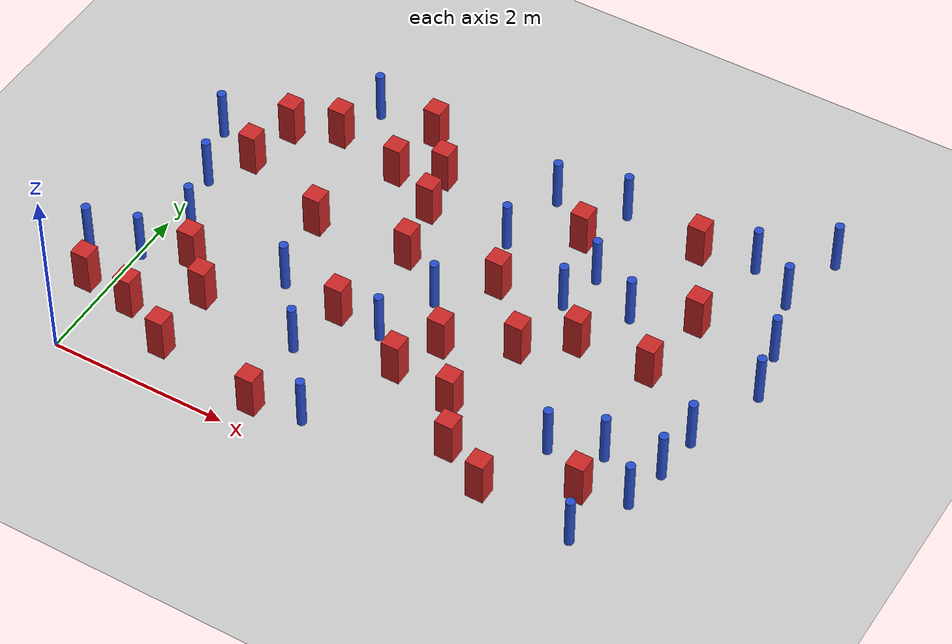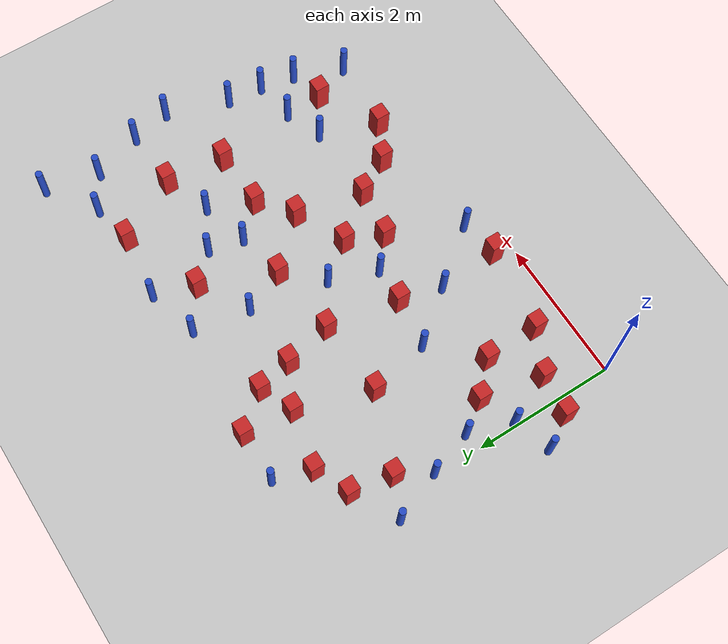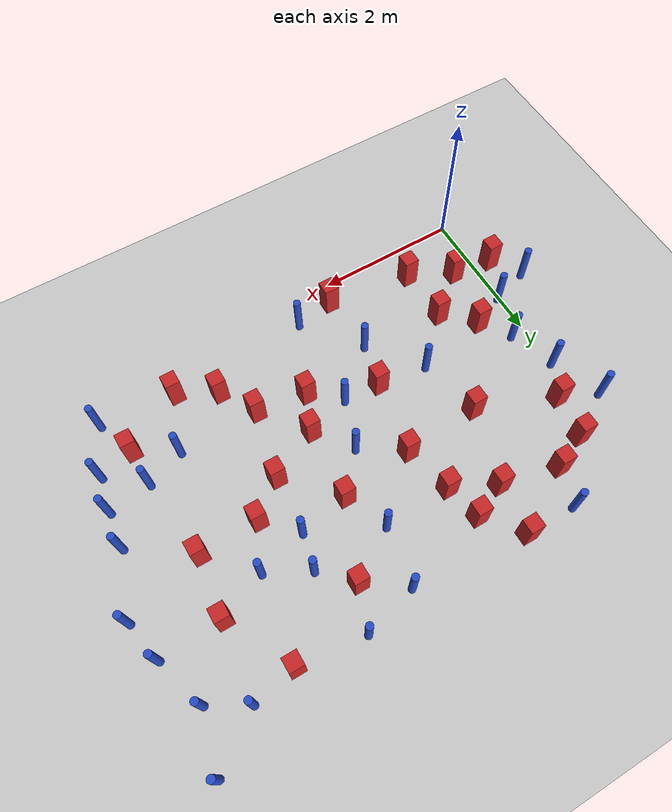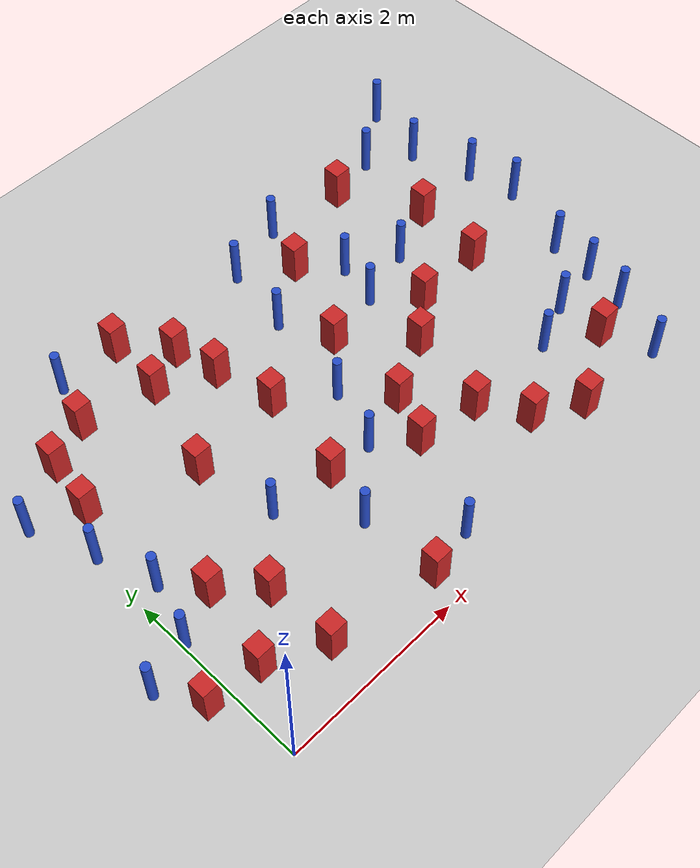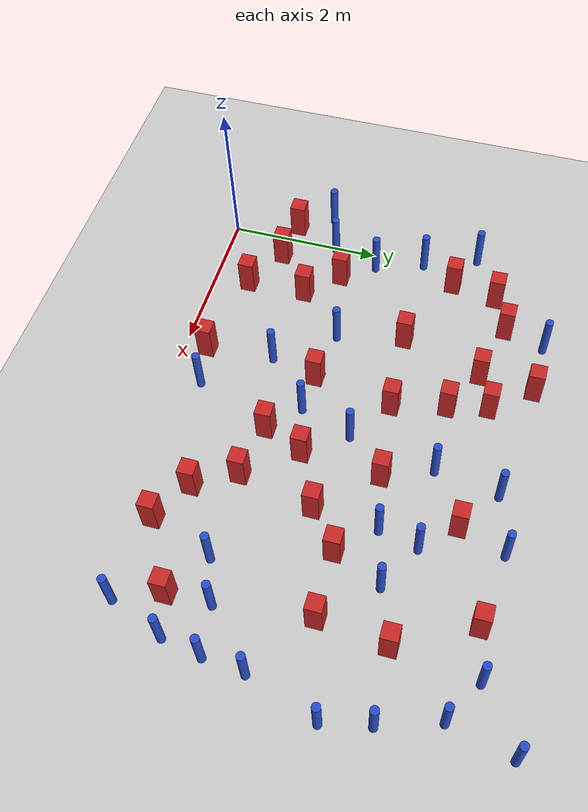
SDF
<sdf version="1.6">
 <world name="default">
  <model name="ground_plane">
   <static>1</static>
   <link name="link">
    <collision name="collision">
     <geometry><plane><normal>0 0 1</normal><size>100 100</size></plane></geometry>
     <surface><friction><ode><mu>100</mu><mu2>50</mu2></ode></friction></surface>
    </collision>
    <visual name="visual">
     <cast_shadows>0</cast_shadows>
     <geometry><plane><normal>0 0 1</normal><size>100 100</size></plane></geometry>
     <material>
      <ambient>1.0 1.0 1.0 1.0</ambient>
      <diffuse>0.8 0.8 0.8 1.0</diffuse>
      <specular>0.01 0.01 0.01 1.000000</specular>
     </material>
    </visual>
   </link>
  </model>
  <model name="square_post_obstacle4">
   <static>true</static>
   <pose>4.64315620051 0.532933999139 8.22691968438e-08 7.2212513382e-06 -7.54495500217e-07 2.29674213826e-05</pose>
   <link name="link">
    <pose>0 0 0.25 0 -0 0</pose>
    <inertial>
     <mass>100</mass>
     <inertia>
      <ixx>0.166667</ixx>
      <ixy>0</ixy>
      <ixz>0</ixz>
      <iyy>0.166667</iyy>
      <iyz>0</iyz>
      <izz>0.166667</izz>
     </inertia>
    </inertial>
    <collision name="collision"><geometry><box><size>.2 .2 .5</size></box></geometry></collision>
    <visual name="visual">
     <geometry><box><size>.2 .2 .5</size></box></geometry>
     <material>
      <script><name>Gazebo/Red</name><uri>file://media/materials/scripts/gazebo.material</uri></script>
     </material>
    </visual>
   </link>
  </model>
  <model name="pole_obstacle4">
   <static>true</static>
   <pose>3.19134797535 3.53822865445 2.88873142074e-08 -9.90536690232e-09 4.6021994898e-07 -1.20965994968e-07</pose>
   <link name="link">
    <pose>0 0 0.3 0 -0 0</pose>
    <inertial>
     <mass>1</mass>
     <inertia><ixx>0.145833</ixx><ixy>0</ixy><ixz>0</ixz><iyy>0.145833</iyy><iyz>0</iyz><izz>0.125</izz></inertia>
    </inertial>
    <collision name="collision">
     <geometry><cylinder><radius>0.05</radius><length>.6</length></cylinder></geometry>
    </collision>
    <visual name="visual">
     <geometry><cylinder><radius>0.05</radius><length>.6</length></cylinder></geometry>
     <material>
      <script><name>Gazebo/Blue</name><uri>file://media/materials/scripts/gazebo.material</uri></script>
     </material>
    </visual>
   </link>
  </model>
  <model name="square_post_obstacle12">
   <static>true</static>
   <pose>4.12839357007 0.815747877024 8.22691968438e-08 7.2212513382e-06 -7.54495500217e-07 2.29674213826e-05</pose>
   <link name="link">
    <pose>0 0 0.25 0 -0 0</pose>
    <inertial>
     <mass>100</mass>
     <inertia>
      <ixx>0.166667</ixx>
      <ixy>0</ixy>
      <ixz>0</ixz>
      <iyy>0.166667</iyy>
      <iyz>0</iyz>
      <izz>0.166667</izz>
     </inertia>
    </inertial>
    <collision name="collision"><geometry><box><size>.2 .2 .5</size></box></geometry></collision>
    <visual name="visual">
     <geometry><box><size>.2 .2 .5</size></box></geometry>
     <material>
      <script><name>Gazebo/Red</name><uri>file://media/materials/scripts/gazebo.material</uri></script>
     </material>
    </visual>
   </link>
  </model>
  <model name="square_post_obstacle25">
   <static>true</static>
   <pose>2.2391453653 1.79144749832 8.22691968438e-08 7.2212513382e-06 -7.54495500217e-07 2.29674213826e-05</pose>
   <link name="link">
    <pose>0 0 0.25 0 -0 0</pose>
    <inertial>
     <mass>100</mass>
     <inertia>
      <ixx>0.166667</ixx>
      <ixy>0</ixy>
      <ixz>0</ixz>
      <iyy>0.166667</iyy>
      <iyz>0</iyz>
      <izz>0.166667</izz>
     </inertia>
    </inertial>
    <collision name="collision"><geometry><box><size>.2 .2 .5</size></box></geometry></collision>
    <visual name="visual">
     <geometry><box><size>.2 .2 .5</size></box></geometry>
     <material>
      <script><name>Gazebo/Red</name><uri>file://media/materials/scripts/gazebo.material</uri></script>
     </material>
    </visual>
   </link>
  </model>
  <model name="square_post_obstacle29">
   <static>true</static>
   <pose>5.43219369134 3.52341071615 8.22691968438e-08 7.2212513382e-06 -7.54495500217e-07 2.29674213826e-05</pose>
   <link name="link">
    <pose>0 0 0.25 0 -0 0</pose>
    <inertial>
     <mass>100</mass>
     <inertia>
      <ixx>0.166667</ixx>
      <ixy>0</ixy>
      <ixz>0</ixz>
      <iyy>0.166667</iyy>
      <iyz>0</iyz>
      <izz>0.166667</izz>
     </inertia>
    </inertial>
    <collision name="collision"><geometry><box><size>.2 .2 .5</size></box></geometry></collision>
    <visual name="visual">
     <geometry><box><size>.2 .2 .5</size></box></geometry>
     <material>
      <script><name>Gazebo/Red</name><uri>file://media/materials/scripts/gazebo.material</uri></script>
     </material>
    </visual>
   </link>
  </model>
  <model name="pole_obstacle21">
   <static>true</static>
   <pose>6.05822907915 1.62308111221 2.88873142074e-08 -9.90536689445e-09 4.60219948999e-07 -1.20965994956e-07</pose>
   <link name="link">
    <pose>0 0 0.3 0 -0 0</pose>
    <inertial>
     <mass>1</mass>
     <inertia><ixx>0.145833</ixx><ixy>0</ixy><ixz>0</ixz><iyy>0.145833</iyy><iyz>0</iyz><izz>0.125</izz></inertia>
    </inertial>
    <collision name="collision">
     <geometry><cylinder><radius>0.05</radius><length>.6</length></cylinder></geometry>
    </collision>
    <visual name="visual">
     <geometry><cylinder><radius>0.05</radius><length>.6</length></cylinder></geometry>
     <material>
      <script><name>Gazebo/Blue</name><uri>file://media/materials/scripts/gazebo.material</uri></script>
     </material>
    </visual>
   </link>
  </model>
  <model name="square_post_obstacle31">
   <static>true</static>
   <pose>1.68851876333 3.79857637818 8.22691968438e-08 7.2212513382e-06 -7.54495500217e-07 2.29674213826e-05</pose>
   <link name="link">
    <pose>0 0 0.25 0 -0 0</pose>
    <inertial>
     <mass>100</mass>
     <inertia>
      <ixx>0.166667</ixx>
      <ixy>0</ixy>
      <ixz>0</ixz>
      <iyy>0.166667</iyy>
      <iyz>0</iyz>
      <izz>0.166667</izz>
     </inertia>
    </inertial>
    <collision name="collision"><geometry><box><size>.2 .2 .5</size></box></geometry></collision>
    <visual name="visual">
     <geometry><box><size>.2 .2 .5</size></box></geometry>
     <material>
      <script><name>Gazebo/Red</name><uri>file://media/materials/scripts/gazebo.material</uri></script>
     </material>
    </visual>
   </link>
  </model>
  <model name="square_post_obstacle33">
   <static>true</static>
   <pose>4.05178741238 2.28068657755 8.22691968438e-08 7.2212513382e-06 -7.54495500217e-07 2.29674213826e-05</pose>
   <link name="link">
    <pose>0 0 0.25 0 -0 0</pose>
    <inertial>
     <mass>100</mass>
     <inertia>
      <ixx>0.166667</ixx>
      <ixy>0</ixy>
      <ixz>0</ixz>
      <iyy>0.166667</iyy>
      <iyz>0</iyz>
      <izz>0.166667</izz>
     </inertia>
    </inertial>
    <collision name="collision"><geometry><box><size>.2 .2 .5</size></box></geometry></collision>
    <visual name="visual">
     <geometry><box><size>.2 .2 .5</size></box></geometry>
     <material>
      <script><name>Gazebo/Red</name><uri>file://media/materials/scripts/gazebo.material</uri></script>
     </material>
    </visual>
   </link>
  </model>
  <model name="pole_obstacle33">
   <static>true</static>
   <pose>0.238726340503 2.08058286565 2.88873142074e-08 -9.90536692545e-09 4.60219948925e-07 -1.2096599499e-07</pose>
   <link name="link">
    <pose>0 0 0.3 0 -0 0</pose>
    <inertial>
     <mass>1</mass>
     <inertia><ixx>0.145833</ixx><ixy>0</ixy><ixz>0</ixz><iyy>0.145833</iyy><iyz>0</iyz><izz>0.125</izz></inertia>
    </inertial>
    <collision name="collision">
     <geometry><cylinder><radius>0.05</radius><length>.6</length></cylinder></geometry>
    </collision>
    <visual name="visual">
     <geometry><cylinder><radius>0.05</radius><length>.6</length></cylinder></geometry>
     <material>
      <script><name>Gazebo/Blue</name><uri>file://media/materials/scripts/gazebo.material</uri></script>
     </material>
    </visual>
   </link>
  </model>
  <model name="pole_obstacle34">
   <static>true</static>
   <pose>4.23573299197 3.57138620205 2.88873142074e-08 -9.90536690245e-09 4.6021994898e-07 -1.20965994966e-07</pose>
   <link name="link">
    <pose>0 0 0.3 0 -0 0</pose>
    <inertial>
     <mass>1</mass>
     <inertia><ixx>0.145833</ixx><ixy>0</ixy><ixz>0</ixz><iyy>0.145833</iyy><iyz>0</iyz><izz>0.125</izz></inertia>
    </inertial>
    <collision name="collision">
     <geometry><cylinder><radius>0.05</radius><length>.6</length></cylinder></geometry>
    </collision>
    <visual name="visual">
     <geometry><cylinder><radius>0.05</radius><length>.6</length></cylinder></geometry>
     <material>
      <script><name>Gazebo/Blue</name><uri>file://media/materials/scripts/gazebo.material</uri></script>
     </material>
    </visual>
   </link>
  </model>
  <model name="pole_obstacle41">
   <static>true</static>
   <pose>2.68685972743 0.407743555463 2.88873142074e-08 -9.90536689307e-09 4.60219949002e-07 -1.20965994954e-07</pose>
   <link name="link">
    <pose>0 0 0.3 0 -0 0</pose>
    <inertial>
     <mass>1</mass>
     <inertia><ixx>0.145833</ixx><ixy>0</ixy><ixz>0</ixz><iyy>0.145833</iyy><iyz>0</iyz><izz>0.125</izz></inertia>
    </inertial>
    <collision name="collision">
     <geometry><cylinder><radius>0.05</radius><length>.6</length></cylinder></geometry>
    </collision>
    <visual name="visual">
     <geometry><cylinder><radius>0.05</radius><length>.6</length></cylinder></geometry>
     <material>
      <script><name>Gazebo/Blue</name><uri>file://media/materials/scripts/gazebo.material</uri></script>
     </material>
    </visual>
   </link>
  </model>
  <model name="square_post_obstacle46">
   <static>true</static>
   <pose>0.934340640416 1.27112510716 8.22691968438e-08 7.2212513382e-06 -7.54495500217e-07 2.29674213826e-05</pose>
   <link name="link">
    <pose>0 0 0.25 0 -0 0</pose>
    <inertial>
     <mass>100</mass>
     <inertia>
      <ixx>0.166667</ixx>
      <ixy>0</ixy>
      <ixz>0</ixz>
      <iyy>0.166667</iyy>
      <iyz>0</iyz>
      <izz>0.166667</izz>
     </inertia>
    </inertial>
    <collision name="collision"><geometry><box><size>.2 .2 .5</size></box></geometry></collision>
    <visual name="visual">
     <geometry><box><size>.2 .2 .5</size></box></geometry>
     <material>
      <script><name>Gazebo/Red</name><uri>file://media/materials/scripts/gazebo.material</uri></script>
     </material>
    </visual>
   </link>
  </model>
  <model name="pole_obstacle50">
   <static>true</static>
   <pose>5.5675825174 4.54384646956 2.88873142074e-08 -9.90536690842e-09 4.60219948965e-07 -1.20965994976e-07</pose>
   <link name="link">
    <pose>0 0 0.3 0 -0 0</pose>
    <inertial>
     <mass>1</mass>
     <inertia><ixx>0.145833</ixx><ixy>0</ixy><ixz>0</ixz><iyy>0.145833</iyy><iyz>0</iyz><izz>0.125</izz></inertia>
    </inertial>
    <collision name="collision">
     <geometry><cylinder><radius>0.05</radius><length>.6</length></cylinder></geometry>
    </collision>
    <visual name="visual">
     <geometry><cylinder><radius>0.05</radius><length>.6</length></cylinder></geometry>
     <material>
      <script><name>Gazebo/Blue</name><uri>file://media/materials/scripts/gazebo.material</uri></script>
     </material>
    </visual>
   </link>
  </model>
  <model name="square_post_obstacle56">
   <static>true</static>
   <pose>2.14393742067 0.316335618549 8.22691968438e-08 7.2212513382e-06 -7.54495500217e-07 2.29674213826e-05</pose>
   <link name="link">
    <pose>0 0 0.25 0 -0 0</pose>
    <inertial>
     <mass>100</mass>
     <inertia>
      <ixx>0.166667</ixx>
      <ixy>0</ixy>
      <ixz>0</ixz>
      <iyy>0.166667</iyy>
      <iyz>0</iyz>
      <izz>0.166667</izz>
     </inertia>
    </inertial>
    <collision name="collision"><geometry><box><size>.2 .2 .5</size></box></geometry></collision>
    <visual name="visual">
     <geometry><box><size>.2 .2 .5</size></box></geometry>
     <material>
      <script><name>Gazebo/Red</name><uri>file://media/materials/scripts/gazebo.material</uri></script>
     </material>
    </visual>
   </link>
  </model>
  <model name="square_post_obstacle58">
   <static>true</static>
   <pose>2.42486386882 2.82110449706 8.22691968438e-08 7.2212513382e-06 -7.54495500217e-07 2.29674213826e-05</pose>
   <link name="link">
    <pose>0 0 0.25 0 -0 0</pose>
    <inertial>
     <mass>100</mass>
     <inertia>
      <ixx>0.166667</ixx>
      <ixy>0</ixy>
      <ixz>0</ixz>
      <iyy>0.166667</iyy>
      <iyz>0</iyz>
      <izz>0.166667</izz>
     </inertia>
    </inertial>
    <collision name="collision"><geometry><box><size>.2 .2 .5</size></box></geometry></collision>
    <visual name="visual">
     <geometry><box><size>.2 .2 .5</size></box></geometry>
     <material>
      <script><name>Gazebo/Red</name><uri>file://media/materials/scripts/gazebo.material</uri></script>
     </material>
    </visual>
   </link>
  </model>
  <model name="square_post_obstacle59">
   <static>true</static>
   <pose>0.286720674219 3.17430164461 8.22691968438e-08 7.22125133819e-06 -7.54495500217e-07 2.29674213826e-05</pose>
   <link name="link">
    <pose>0 0 0.25 0 -0 0</pose>
    <inertial>
     <mass>100</mass>
     <inertia>
      <ixx>0.166667</ixx>
      <ixy>0</ixy>
      <ixz>0</ixz>
      <iyy>0.166667</iyy>
      <iyz>0</iyz>
      <izz>0.166667</izz>
     </inertia>
    </inertial>
    <collision name="collision"><geometry><box><size>.2 .2 .5</size></box></geometry></collision>
    <visual name="visual">
     <geometry><box><size>.2 .2 .5</size></box></geometry>
     <material>
      <script><name>Gazebo/Red</name><uri>file://media/materials/scripts/gazebo.material</uri></script>
     </material>
    </visual>
   </link>
  </model>
  <model name="square_post_obstacle64">
   <static>true</static>
   <pose>4.52004149842 2.66092144968 8.22691968438e-08 7.2212513382e-06 -7.54495500217e-07 2.29674213826e-05</pose>
   <link name="link">
    <pose>0 0 0.25 0 -0 0</pose>
    <inertial>
     <mass>100</mass>
     <inertia>
      <ixx>0.166667</ixx>
      <ixy>0</ixy>
      <ixz>0</ixz>
      <iyy>0.166667</iyy>
      <iyz>0</iyz>
      <izz>0.166667</izz>
     </inertia>
    </inertial>
    <collision name="collision"><geometry><box><size>.2 .2 .5</size></box></geometry></collision>
    <visual name="visual">
     <geometry><box><size>.2 .2 .5</size></box></geometry>
     <material>
      <script><name>Gazebo/Red</name><uri>file://media/materials/scripts/gazebo.material</uri></script>
     </material>
    </visual>
   </link>
  </model>
  <model name="square_post_obstacle75">
   <static>true</static>
   <pose>3.85508381161 3.96146125813 8.22691968438e-08 7.2212513382e-06 -7.54495500217e-07 2.29674213826e-05</pose>
   <link name="link">
    <pose>0 0 0.25 0 -0 0</pose>
    <inertial>
     <mass>100</mass>
     <inertia>
      <ixx>0.166667</ixx>
      <ixy>0</ixy>
      <ixz>0</ixz>
      <iyy>0.166667</iyy>
      <iyz>0</iyz>
      <izz>0.166667</izz>
     </inertia>
    </inertial>
    <collision name="collision"><geometry><box><size>.2 .2 .5</size></box></geometry></collision>
    <visual name="visual">
     <geometry><box><size>.2 .2 .5</size></box></geometry>
     <material>
      <script><name>Gazebo/Red</name><uri>file://media/materials/scripts/gazebo.material</uri></script>
     </material>
    </visual>
   </link>
  </model>
  <model name="pole_obstacle69">
   <static>true</static>
   <pose>6.0632261702 4.26010532366 2.88873142074e-08 -9.90536690842e-09 4.60219948965e-07 -1.20965994976e-07</pose>
   <link name="link">
    <pose>0 0 0.3 0 -0 0</pose>
    <inertial>
     <mass>1</mass>
     <inertia><ixx>0.145833</ixx><ixy>0</ixy><ixz>0</ixz><iyy>0.145833</iyy><iyz>0</iyz><izz>0.125</izz></inertia>
    </inertial>
    <collision name="collision">
     <geometry><cylinder><radius>0.05</radius><length>.6</length></cylinder></geometry>
    </collision>
    <visual name="visual">
     <geometry><cylinder><radius>0.05</radius><length>.6</length></cylinder></geometry>
     <material>
      <script><name>Gazebo/Blue</name><uri>file://media/materials/scripts/gazebo.material</uri></script>
     </material>
    </visual>
   </link>
  </model>
  <model name="pole_obstacle79">
   <static>true</static>
   <pose>1.04974675627 4.51447699527 2.88873142074e-08 -9.90536689905e-09 4.60219948988e-07 -1.20965994961e-07</pose>
   <link name="link">
    <pose>0 0 0.3 0 -0 0</pose>
    <inertial>
     <mass>1</mass>
     <inertia><ixx>0.145833</ixx><ixy>0</ixy><ixz>0</ixz><iyy>0.145833</iyy><iyz>0</iyz><izz>0.125</izz></inertia>
    </inertial>
    <collision name="collision">
     <geometry><cylinder><radius>0.05</radius><length>.6</length></cylinder></geometry>
    </collision>
    <visual name="visual">
     <geometry><cylinder><radius>0.05</radius><length>.6</length></cylinder></geometry>
     <material>
      <script><name>Gazebo/Blue</name><uri>file://media/materials/scripts/gazebo.material</uri></script>
     </material>
    </visual>
   </link>
  </model>
  <model name="pole_obstacle86">
   <static>true</static>
   <pose>2.08764137039 1.17984665923 2.88873142074e-08 -9.90536689395e-09 4.60219949e-07 -1.20965994953e-07</pose>
   <link name="link">
    <pose>0 0 0.3 0 -0 0</pose>
    <inertial>
     <mass>1</mass>
     <inertia><ixx>0.145833</ixx><ixy>0</ixy><ixz>0</ixz><iyy>0.145833</iyy><iyz>0</iyz><izz>0.125</izz></inertia>
    </inertial>
    <collision name="collision">
     <geometry><cylinder><radius>0.05</radius><length>.6</length></cylinder></geometry>
    </collision>
    <visual name="visual">
     <geometry><cylinder><radius>0.05</radius><length>.6</length></cylinder></geometry>
     <material>
      <script><name>Gazebo/Blue</name><uri>file://media/materials/scripts/gazebo.material</uri></script>
     </material>
    </visual>
   </link>
  </model>
  <model name="square_post_obstacle81">
   <static>true</static>
   <pose>4.96992551468 4.42160160715 8.22691968438e-08 7.2212513382e-06 -7.54495500217e-07 2.29674213826e-05</pose>
   <link name="link">
    <pose>0 0 0.25 0 -0 0</pose>
    <inertial>
     <mass>100</mass>
     <inertia>
      <ixx>0.166667</ixx>
      <ixy>0</ixy>
      <ixz>0</ixz>
      <iyy>0.166667</iyy>
      <iyz>0</iyz>
      <izz>0.166667</izz>
     </inertia>
    </inertial>
    <collision name="collision"><geometry><box><size>.2 .2 .5</size></box></geometry></collision>
    <visual name="visual">
     <geometry><box><size>.2 .2 .5</size></box></geometry>
     <material>
      <script><name>Gazebo/Red</name><uri>file://media/materials/scripts/gazebo.material</uri></script>
     </material>
    </visual>
   </link>
  </model>
  <model name="pole_obstacle97">
   <static>true</static>
   <pose>0.0272300555723 2.71362402524 2.88873142074e-08 -9.9053668965e-09 4.60219948993e-07 -1.20965994956e-07</pose>
   <link name="link">
    <pose>0 0 0.3 0 -0 0</pose>
    <inertial>
     <mass>1</mass>
     <inertia><ixx>0.145833</ixx><ixy>0</ixy><ixz>0</ixz><iyy>0.145833</iyy><iyz>0</iyz><izz>0.125</izz></inertia>
    </inertial>
    <collision name="collision">
     <geometry><cylinder><radius>0.05</radius><length>.6</length></cylinder></geometry>
    </collision>
    <visual name="visual">
     <geometry><cylinder><radius>0.05</radius><length>.6</length></cylinder></geometry>
     <material>
      <script><name>Gazebo/Blue</name><uri>file://media/materials/scripts/gazebo.material</uri></script>
     </material>
    </visual>
   </link>
  </model>
  <model name="square_post_obstacle89">
   <static>true</static>
   <pose>3.43835449984 2.9427467139 8.22691968438e-08 7.2212513382e-06 -7.54495500217e-07 2.29674213826e-05</pose>
   <link name="link">
    <pose>0 0 0.25 0 -0 0</pose>
    <inertial>
     <mass>100</mass>
     <inertia>
      <ixx>0.166667</ixx>
      <ixy>0</ixy>
      <ixz>0</ixz>
      <iyy>0.166667</iyy>
      <iyz>0</iyz>
      <izz>0.166667</izz>
     </inertia>
    </inertial>
    <collision name="collision"><geometry><box><size>.2 .2 .5</size></box></geometry></collision>
    <visual name="visual">
     <geometry><box><size>.2 .2 .5</size></box></geometry>
     <material>
      <script><name>Gazebo/Red</name><uri>file://media/materials/scripts/gazebo.material</uri></script>
     </material>
    </visual>
   </link>
  </model>
  <model name="pole_obstacle103">
   <static>true</static>
   <pose>6.28585760596 3.56182371785 2.88873142074e-08 -9.90536690245e-09 4.6021994898e-07 -1.20965994966e-07</pose>
   <link name="link">
    <pose>0 0 0.3 0 -0 0</pose>
    <inertial>
     <mass>1</mass>
     <inertia><ixx>0.145833</ixx><ixy>0</ixy><ixz>0</ixz><iyy>0.145833</iyy><iyz>0</iyz><izz>0.125</izz></inertia>
    </inertial>
    <collision name="collision">
     <geometry><cylinder><radius>0.05</radius><length>.6</length></cylinder></geometry>
    </collision>
    <visual name="visual">
     <geometry><cylinder><radius>0.05</radius><length>.6</length></cylinder></geometry>
     <material>
      <script><name>Gazebo/Blue</name><uri>file://media/materials/scripts/gazebo.material</uri></script>
     </material>
    </visual>
   </link>
  </model>
  <model name="square_post_obstacle97">
   <static>true</static>
   <pose>5.33137170861 2.68234287815 8.22691968438e-08 7.2212513382e-06 -7.54495500217e-07 2.29674213826e-05</pose>
   <link name="link">
    <pose>0 0 0.25 0 -0 0</pose>
    <inertial>
     <mass>100</mass>
     <inertia>
      <ixx>0.166667</ixx>
      <ixy>0</ixy>
      <ixz>0</ixz>
      <iyy>0.166667</iyy>
      <iyz>0</iyz>
      <izz>0.166667</izz>
     </inertia>
    </inertial>
    <collision name="collision"><geometry><box><size>.2 .2 .5</size></box></geometry></collision>
    <visual name="visual">
     <geometry><box><size>.2 .2 .5</size></box></geometry>
     <material>
      <script><name>Gazebo/Red</name><uri>file://media/materials/scripts/gazebo.material</uri></script>
     </material>
    </visual>
   </link>
  </model>
  <model name="square_post_obstacle98">
   <static>true</static>
   <pose>2.27290177453 3.49935190847 8.22691968438e-08 7.2212513382e-06 -7.54495500217e-07 2.29674213826e-05</pose>
   <link name="link">
    <pose>0 0 0.25 0 -0 0</pose>
    <inertial>
     <mass>100</mass>
     <inertia>
      <ixx>0.166667</ixx>
      <ixy>0</ixy>
      <ixz>0</ixz>
      <iyy>0.166667</iyy>
      <iyz>0</iyz>
      <izz>0.166667</izz>
     </inertia>
    </inertial>
    <collision name="collision"><geometry><box><size>.2 .2 .5</size></box></geometry></collision>
    <visual name="visual">
     <geometry><box><size>.2 .2 .5</size></box></geometry>
     <material>
      <script><name>Gazebo/Red</name><uri>file://media/materials/scripts/gazebo.material</uri></script>
     </material>
    </visual>
   </link>
  </model>
  <model name="pole_obstacle111">
   <static>true</static>
   <pose>1.53647402345 1.88105273789 2.88873142074e-08 -9.90536689672e-09 4.60219948993e-07 -1.20965994959e-07</pose>
   <link name="link">
    <pose>0 0 0.3 0 -0 0</pose>
    <inertial>
     <mass>1</mass>
     <inertia><ixx>0.145833</ixx><ixy>0</ixy><ixz>0</ixz><iyy>0.145833</iyy><iyz>0</iyz><izz>0.125</izz></inertia>
    </inertial>
    <collision name="collision">
     <geometry><cylinder><radius>0.05</radius><length>.6</length></cylinder></geometry>
    </collision>
    <visual name="visual">
     <geometry><cylinder><radius>0.05</radius><length>.6</length></cylinder></geometry>
     <material>
      <script><name>Gazebo/Blue</name><uri>file://media/materials/scripts/gazebo.material</uri></script>
     </material>
    </visual>
   </link>
  </model>
  <model name="square_post_obstacle102">
   <static>true</static>
   <pose>0.884784482056 3.98600206176 8.22691968438e-08 7.2212513382e-06 -7.54495500217e-07 2.29674213826e-05</pose>
   <link name="link">
    <pose>0 0 0.25 0 -0 0</pose>
    <inertial>
     <mass>100</mass>
     <inertia>
      <ixx>0.166667</ixx>
      <ixy>0</ixy>
      <ixz>0</ixz>
      <iyy>0.166667</iyy>
      <iyz>0</iyz>
      <izz>0.166667</izz>
     </inertia>
    </inertial>
    <collision name="collision"><geometry><box><size>.2 .2 .5</size></box></geometry></collision>
    <visual name="visual">
     <geometry><box><size>.2 .2 .5</size></box></geometry>
     <material>
      <script><name>Gazebo/Red</name><uri>file://media/materials/scripts/gazebo.material</uri></script>
     </material>
    </visual>
   </link>
  </model>
  <model name="square_post_obstacle104">
   <static>true</static>
   <pose>3.13952242443 1.42388670623 8.22691968438e-08 7.2212513382e-06 -7.54495500217e-07 2.29674213826e-05</pose>
   <link name="link">
    <pose>0 0 0.25 0 -0 0</pose>
    <inertial>
     <mass>100</mass>
     <inertia>
      <ixx>0.166667</ixx>
      <ixy>0</ixy>
      <ixz>0</ixz>
      <iyy>0.166667</iyy>
      <iyz>0</iyz>
      <izz>0.166667</izz>
     </inertia>
    </inertial>
    <collision name="collision"><geometry><box><size>.2 .2 .5</size></box></geometry></collision>
    <visual name="visual">
     <geometry><box><size>.2 .2 .5</size></box></geometry>
     <material>
      <script><name>Gazebo/Red</name><uri>file://media/materials/scripts/gazebo.material</uri></script>
     </material>
    </visual>
   </link>
  </model>
  <model name="pole_obstacle126">
   <static>true</static>
   <pose>5.69443365619 0.451408508842 2.88873142074e-08 -9.90536689483e-09 4.60219948998e-07 -1.20965994956e-07</pose>
   <link name="link">
    <pose>0 0 0.3 0 -0 0</pose>
    <inertial>
     <mass>1</mass>
     <inertia><ixx>0.145833</ixx><ixy>0</ixy><ixz>0</ixz><iyy>0.145833</iyy><iyz>0</iyz><izz>0.125</izz></inertia>
    </inertial>
    <collision name="collision">
     <geometry><cylinder><radius>0.05</radius><length>.6</length></cylinder></geometry>
    </collision>
    <visual name="visual">
     <geometry><cylinder><radius>0.05</radius><length>.6</length></cylinder></geometry>
     <material>
      <script><name>Gazebo/Blue</name><uri>file://media/materials/scripts/gazebo.material</uri></script>
     </material>
    </visual>
   </link>
  </model>
  <model name="square_post_obstacle113">
   <static>true</static>
   <pose>3.35968048543 1.9381822406 8.22691968438e-08 7.2212513382e-06 -7.54495500217e-07 2.29674213826e-05</pose>
   <link name="link">
    <pose>0 0 0.25 0 -0 0</pose>
    <inertial>
     <mass>100</mass>
     <inertia>
      <ixx>0.166667</ixx>
      <ixy>0</ixy>
      <ixz>0</ixz>
      <iyy>0.166667</iyy>
      <iyz>0</iyz>
      <izz>0.166667</izz>
     </inertia>
    </inertial>
    <collision name="collision"><geometry><box><size>.2 .2 .5</size></box></geometry></collision>
    <visual name="visual">
     <geometry><box><size>.2 .2 .5</size></box></geometry>
     <material>
      <script><name>Gazebo/Red</name><uri>file://media/materials/scripts/gazebo.material</uri></script>
     </material>
    </visual>
   </link>
  </model>
  <model name="pole_obstacle132">
   <static>true</static>
   <pose>6.10958342794 2.12949675019 2.88873142074e-08 -9.90536690245e-09 4.6021994898e-07 -1.20965994966e-07</pose>
   <link name="link">
    <pose>0 0 0.3 0 -0 0</pose>
    <inertial>
     <mass>1</mass>
     <inertia><ixx>0.145833</ixx><ixy>0</ixy><ixz>0</ixz><iyy>0.145833</iyy><iyz>0</iyz><izz>0.125</izz></inertia>
    </inertial>
    <collision name="collision">
     <geometry><cylinder><radius>0.05</radius><length>.6</length></cylinder></geometry>
    </collision>
    <visual name="visual">
     <geometry><cylinder><radius>0.05</radius><length>.6</length></cylinder></geometry>
     <material>
      <script><name>Gazebo/Blue</name><uri>file://media/materials/scripts/gazebo.material</uri></script>
     </material>
    </visual>
   </link>
  </model>
  <model name="pole_obstacle142">
   <static>true</static>
   <pose>4.12299955228 3.08208296249 2.88873142074e-08 -9.90536690245e-09 4.6021994898e-07 -1.20965994966e-07</pose>
   <link name="link">
    <pose>0 0 0.3 0 -0 0</pose>
    <inertial>
     <mass>1</mass>
     <inertia><ixx>0.145833</ixx><ixy>0</ixy><ixz>0</ixz><iyy>0.145833</iyy><iyz>0</iyz><izz>0.125</izz></inertia>
    </inertial>
    <collision name="collision">
     <geometry><cylinder><radius>0.05</radius><length>.6</length></cylinder></geometry>
    </collision>
    <visual name="visual">
     <geometry><cylinder><radius>0.05</radius><length>.6</length></cylinder></geometry>
     <material>
      <script><name>Gazebo/Blue</name><uri>file://media/materials/scripts/gazebo.material</uri></script>
     </material>
    </visual>
   </link>
  </model>
  <model name="square_post_obstacle133">
   <static>true</static>
   <pose>0.393634550761 3.77082138668 8.22691968438e-08 7.2212513382e-06 -7.54495500217e-07 2.29674213826e-05</pose>
   <link name="link">
    <pose>0 0 0.25 0 -0 0</pose>
    <inertial>
     <mass>100</mass>
     <inertia>
      <ixx>0.166667</ixx>
      <ixy>0</ixy>
      <ixz>0</ixz>
      <iyy>0.166667</iyy>
      <iyz>0</iyz>
      <izz>0.166667</izz>
     </inertia>
    </inertial>
    <collision name="collision"><geometry><box><size>.2 .2 .5</size></box></geometry></collision>
    <visual name="visual">
     <geometry><box><size>.2 .2 .5</size></box></geometry>
     <material>
      <script><name>Gazebo/Red</name><uri>file://media/materials/scripts/gazebo.material</uri></script>
     </material>
    </visual>
   </link>
  </model>
  <model name="pole_obstacle151">
   <static>true</static>
   <pose>0.0349200983374 1.46074365521 2.88873142074e-08 -9.90536689978e-09 4.60219948986e-07 -1.20965994963e-07</pose>
   <link name="link">
    <pose>0 0 0.3 0 -0 0</pose>
    <inertial>
     <mass>1</mass>
     <inertia><ixx>0.145833</ixx><ixy>0</ixy><ixz>0</ixz><iyy>0.145833</iyy><iyz>0</iyz><izz>0.125</izz></inertia>
    </inertial>
    <collision name="collision">
     <geometry><cylinder><radius>0.05</radius><length>.6</length></cylinder></geometry>
    </collision>
    <visual name="visual">
     <geometry><cylinder><radius>0.05</radius><length>.6</length></cylinder></geometry>
     <material>
      <script><name>Gazebo/Blue</name><uri>file://media/materials/scripts/gazebo.material</uri></script>
     </material>
    </visual>
   </link>
  </model>
  <model name="pole_obstacle154">
   <static>true</static>
   <pose>4.06265854393 4.54183864303 2.88873142074e-08 -9.90536690842e-09 4.60219948965e-07 -1.20965994976e-07</pose>
   <link name="link">
    <pose>0 0 0.3 0 -0 0</pose>
    <inertial>
     <mass>1</mass>
     <inertia><ixx>0.145833</ixx><ixy>0</ixy><ixz>0</ixz><iyy>0.145833</iyy><iyz>0</iyz><izz>0.125</izz></inertia>
    </inertial>
    <collision name="collision">
     <geometry><cylinder><radius>0.05</radius><length>.6</length></cylinder></geometry>
    </collision>
    <visual name="visual">
     <geometry><cylinder><radius>0.05</radius><length>.6</length></cylinder></geometry>
     <material>
      <script><name>Gazebo/Blue</name><uri>file://media/materials/scripts/gazebo.material</uri></script>
     </material>
    </visual>
   </link>
  </model>
  <model name="pole_obstacle156">
   <static>true</static>
   <pose>5.96681386958 1.13118919613 2.88873142074e-08 -9.90536689445e-09 4.60219948999e-07 -1.20965994956e-07</pose>
   <link name="link">
    <pose>0 0 0.3 0 -0 0</pose>
    <inertial>
     <mass>1</mass>
     <inertia><ixx>0.145833</ixx><ixy>0</ixy><ixz>0</ixz><iyy>0.145833</iyy><iyz>0</iyz><izz>0.125</izz></inertia>
    </inertial>
    <collision name="collision">
     <geometry><cylinder><radius>0.05</radius><length>.6</length></cylinder></geometry>
    </collision>
    <visual name="visual">
     <geometry><cylinder><radius>0.05</radius><length>.6</length></cylinder></geometry>
     <material>
      <script><name>Gazebo/Blue</name><uri>file://media/materials/scripts/gazebo.material</uri></script>
     </material>
    </visual>
   </link>
  </model>
  <model name="square_post_obstacle151">
   <static>true</static>
   <pose>2.15747322674 4.0038265825 8.22691968438e-08 7.22125133819e-06 -7.54495500217e-07 2.29674213826e-05</pose>
   <link name="link">
    <pose>0 0 0.25 0 -0 0</pose>
    <inertial>
     <mass>100</mass>
     <inertia>
      <ixx>0.166667</ixx>
      <ixy>0</ixy>
      <ixz>0</ixz>
      <iyy>0.166667</iyy>
      <iyz>0</iyz>
      <izz>0.166667</izz>
     </inertia>
    </inertial>
    <collision name="collision"><geometry><box><size>.2 .2 .5</size></box></geometry></collision>
    <visual name="visual">
     <geometry><box><size>.2 .2 .5</size></box></geometry>
     <material>
      <script><name>Gazebo/Red</name><uri>file://media/materials/scripts/gazebo.material</uri></script>
     </material>
    </visual>
   </link>
  </model>
  <model name="pole_obstacle159">
   <static>true</static>
   <pose>3.33158600613 4.34289431199 2.88873142074e-08 -9.90536689859e-09 4.60219948989e-07 -1.20965994961e-07</pose>
   <link name="link">
    <pose>0 0 0.3 0 -0 0</pose>
    <inertial>
     <mass>1</mass>
     <inertia><ixx>0.145833</ixx><ixy>0</ixy><ixz>0</ixz><iyy>0.145833</iyy><iyz>0</iyz><izz>0.125</izz></inertia>
    </inertial>
    <collision name="collision">
     <geometry><cylinder><radius>0.05</radius><length>.6</length></cylinder></geometry>
    </collision>
    <visual name="visual">
     <geometry><cylinder><radius>0.05</radius><length>.6</length></cylinder></geometry>
     <material>
      <script><name>Gazebo/Blue</name><uri>file://media/materials/scripts/gazebo.material</uri></script>
     </material>
    </visual>
   </link>
  </model>
  <model name="square_post_obstacle155">
   <static>true</static>
   <pose>0.352086586032 0.7930277766 8.22691968438e-08 7.2212513382e-06 -7.54495500217e-07 2.29674213826e-05</pose>
   <link name="link">
    <pose>0 0 0.25 0 -0 0</pose>
    <inertial>
     <mass>100</mass>
     <inertia>
      <ixx>0.166667</ixx>
      <ixy>0</ixy>
      <ixz>0</ixz>
      <iyy>0.166667</iyy>
      <iyz>0</iyz>
      <izz>0.166667</izz>
     </inertia>
    </inertial>
    <collision name="collision"><geometry><box><size>.2 .2 .5</size></box></geometry></collision>
    <visual name="visual">
     <geometry><box><size>.2 .2 .5</size></box></geometry>
     <material>
      <script><name>Gazebo/Red</name><uri>file://media/materials/scripts/gazebo.material</uri></script>
     </material>
    </visual>
   </link>
  </model>
  <model name="pole_obstacle165">
   <static>true</static>
   <pose>4.94824828595 1.33037283375 2.88873142074e-08 -9.90536689445e-09 4.60219948999e-07 -1.20965994956e-07</pose>
   <link name="link">
    <pose>0 0 0.3 0 -0 0</pose>
    <inertial>
     <mass>1</mass>
     <inertia><ixx>0.145833</ixx><ixy>0</ixy><ixz>0</ixz><iyy>0.145833</iyy><iyz>0</iyz><izz>0.125</izz></inertia>
    </inertial>
    <collision name="collision">
     <geometry><cylinder><radius>0.05</radius><length>.6</length></cylinder></geometry>
    </collision>
    <visual name="visual">
     <geometry><cylinder><radius>0.05</radius><length>.6</length></cylinder></geometry>
     <material>
      <script><name>Gazebo/Blue</name><uri>file://media/materials/scripts/gazebo.material</uri></script>
     </material>
    </visual>
   </link>
  </model>
  <model name="pole_obstacle167">
   <static>true</static>
   <pose>5.47253197157 1.53473441532 2.88873142074e-08 -9.90536689445e-09 4.60219948999e-07 -1.20965994956e-07</pose>
   <link name="link">
    <pose>0 0 0.3 0 -0 0</pose>
    <inertial>
     <mass>1</mass>
     <inertia><ixx>0.145833</ixx><ixy>0</ixy><ixz>0</ixz><iyy>0.145833</iyy><iyz>0</iyz><izz>0.125</izz></inertia>
    </inertial>
    <collision name="collision">
     <geometry><cylinder><radius>0.05</radius><length>.6</length></cylinder></geometry>
    </collision>
    <visual name="visual">
     <geometry><cylinder><radius>0.05</radius><length>.6</length></cylinder></geometry>
     <material>
      <script><name>Gazebo/Blue</name><uri>file://media/materials/scripts/gazebo.material</uri></script>
     </material>
    </visual>
   </link>
  </model>
  <model name="square_post_obstacle163">
   <static>true</static>
   <pose>1.36160359161 2.74641841502 8.22691968438e-08 7.2212513382e-06 -7.54495500217e-07 2.29674213826e-05</pose>
   <link name="link">
    <pose>0 0 0.25 0 -0 0</pose>
    <inertial>
     <mass>100</mass>
     <inertia>
      <ixx>0.166667</ixx>
      <ixy>0</ixy>
      <ixz>0</ixz>
      <iyy>0.166667</iyy>
      <iyz>0</iyz>
      <izz>0.166667</izz>
     </inertia>
    </inertial>
    <collision name="collision"><geometry><box><size>.2 .2 .5</size></box></geometry></collision>
    <visual name="visual">
     <geometry><box><size>.2 .2 .5</size></box></geometry>
     <material>
      <script><name>Gazebo/Red</name><uri>file://media/materials/scripts/gazebo.material</uri></script>
     </material>
    </visual>
   </link>
  </model>
  <model name="pole_obstacle175">
   <static>true</static>
   <pose>-0.241704926799 3.41235952012 2.88873142074e-08 -9.90536692547e-09 4.60219948925e-07 -1.2096599499e-07</pose>
   <link name="link">
    <pose>0 0 0.3 0 -0 0</pose>
    <inertial>
     <mass>1</mass>
     <inertia><ixx>0.145833</ixx><ixy>0</ixy><ixz>0</ixz><iyy>0.145833</iyy><iyz>0</iyz><izz>0.125</izz></inertia>
    </inertial>
    <collision name="collision">
     <geometry><cylinder><radius>0.05</radius><length>.6</length></cylinder></geometry>
    </collision>
    <visual name="visual">
     <geometry><cylinder><radius>0.05</radius><length>.6</length></cylinder></geometry>
     <material>
      <script><name>Gazebo/Blue</name><uri>file://media/materials/scripts/gazebo.material</uri></script>
     </material>
    </visual>
   </link>
  </model>
  <model name="pole_obstacle178">
   <static>true</static>
   <pose>2.74436001743 1.76319078255 2.88873142074e-08 -9.90536689395e-09 4.60219949e-07 -1.20965994953e-07</pose>
   <link name="link">
    <pose>0 0 0.3 0 -0 0</pose>
    <inertial>
     <mass>1</mass>
     <inertia><ixx>0.145833</ixx><ixy>0</ixy><ixz>0</ixz><iyy>0.145833</iyy><iyz>0</iyz><izz>0.125</izz></inertia>
    </inertial>
    <collision name="collision">
     <geometry><cylinder><radius>0.05</radius><length>.6</length></cylinder></geometry>
    </collision>
    <visual name="visual">
     <geometry><cylinder><radius>0.05</radius><length>.6</length></cylinder></geometry>
     <material>
      <script><name>Gazebo/Blue</name><uri>file://media/materials/scripts/gazebo.material</uri></script>
     </material>
    </visual>
   </link>
  </model>
  <model name="square_post_obstacle181">
   <static>true</static>
   <pose>5.47915784331 1.00253748541 8.22691968438e-08 7.2212513382e-06 -7.54495500217e-07 2.29674213826e-05</pose>
   <link name="link">
    <pose>0 0 0.25 0 -0 0</pose>
    <inertial>
     <mass>100</mass>
     <inertia>
      <ixx>0.166667</ixx>
      <ixy>0</ixy>
      <ixz>0</ixz>
      <iyy>0.166667</iyy>
      <iyz>0</iyz>
      <izz>0.166667</izz>
     </inertia>
    </inertial>
    <collision name="collision"><geometry><box><size>.2 .2 .5</size></box></geometry></collision>
    <visual name="visual">
     <geometry><box><size>.2 .2 .5</size></box></geometry>
     <material>
      <script><name>Gazebo/Red</name><uri>file://media/materials/scripts/gazebo.material</uri></script>
     </material>
    </visual>
   </link>
  </model>
  <model name="square_post_obstacle191">
   <static>true</static>
   <pose>-0.219259635155 0.863751279255 8.22691968438e-08 7.2212513382e-06 -7.54495500217e-07 2.29674213826e-05</pose>
   <link name="link">
    <pose>0 0 0.25 0 -0 0</pose>
    <inertial>
     <mass>100</mass>
     <inertia>
      <ixx>0.166667</ixx>
      <ixy>0</ixy>
      <ixz>0</ixz>
      <iyy>0.166667</iyy>
      <iyz>0</iyz>
      <izz>0.166667</izz>
     </inertia>
    </inertial>
    <collision name="collision"><geometry><box><size>.2 .2 .5</size></box></geometry></collision>
    <visual name="visual">
     <geometry><box><size>.2 .2 .5</size></box></geometry>
     <material>
      <script><name>Gazebo/Red</name><uri>file://media/materials/scripts/gazebo.material</uri></script>
     </material>
    </visual>
   </link>
  </model>
  <model name="square_post_obstacle203">
   <static>true</static>
   <pose>1.75634602901 4.49919880156 8.22691968438e-08 7.2212513382e-06 -7.54495500217e-07 2.29674213826e-05</pose>
   <link name="link">
    <pose>0 0 0.25 0 -0 0</pose>
    <inertial>
     <mass>100</mass>
     <inertia>
      <ixx>0.166667</ixx>
      <ixy>0</ixy>
      <ixz>0</ixz>
      <iyy>0.166667</iyy>
      <iyz>0</iyz>
      <izz>0.166667</izz>
     </inertia>
    </inertial>
    <collision name="collision"><geometry><box><size>.2 .2 .5</size></box></geometry></collision>
    <visual name="visual">
     <geometry><box><size>.2 .2 .5</size></box></geometry>
     <material>
      <script><name>Gazebo/Red</name><uri>file://media/materials/scripts/gazebo.material</uri></script>
     </material>
    </visual>
   </link>
  </model>
  <model name="pole_obstacle195">
   <static>true</static>
   <pose>6.40408859703 3.00228312019 2.88873142074e-08 -9.90536690245e-09 4.6021994898e-07 -1.20965994966e-07</pose>
   <link name="link">
    <pose>0 0 0.3 0 -0 0</pose>
    <inertial>
     <mass>1</mass>
     <inertia><ixx>0.145833</ixx><ixy>0</ixy><ixz>0</ixz><iyy>0.145833</iyy><iyz>0</iyz><izz>0.125</izz></inertia>
    </inertial>
    <collision name="collision">
     <geometry><cylinder><radius>0.05</radius><length>.6</length></cylinder></geometry>
    </collision>
    <visual name="visual">
     <geometry><cylinder><radius>0.05</radius><length>.6</length></cylinder></geometry>
     <material>
      <script><name>Gazebo/Blue</name><uri>file://media/materials/scripts/gazebo.material</uri></script>
     </material>
    </visual>
   </link>
  </model>
  <model name="square_post_obstacle210">
   <static>true</static>
   <pose>0.531760105378 1.67073738844 8.22691968438e-08 7.2212513382e-06 -7.54495500217e-07 2.29674213826e-05</pose>
   <link name="link">
    <pose>0 0 0.25 0 -0 0</pose>
    <inertial>
     <mass>100</mass>
     <inertia>
      <ixx>0.166667</ixx>
      <ixy>0</ixy>
      <ixz>0</ixz>
      <iyy>0.166667</iyy>
      <iyz>0</iyz>
      <izz>0.166667</izz>
     </inertia>
    </inertial>
    <collision name="collision"><geometry><box><size>.2 .2 .5</size></box></geometry></collision>
    <visual name="visual">
     <geometry><box><size>.2 .2 .5</size></box></geometry>
     <material>
      <script><name>Gazebo/Red</name><uri>file://media/materials/scripts/gazebo.material</uri></script>
     </material>
    </visual>
   </link>
  </model>
  <model name="pole_obstacle207">
   <static>true</static>
   <pose>6.2451052184 5.02386253208 2.88873142074e-08 -9.90536690842e-09 4.60219948965e-07 -1.20965994976e-07</pose>
   <link name="link">
    <pose>0 0 0.3 0 -0 0</pose>
    <inertial>
     <mass>1</mass>
     <inertia><ixx>0.145833</ixx><ixy>0</ixy><ixz>0</ixz><iyy>0.145833</iyy><iyz>0</iyz><izz>0.125</izz></inertia>
    </inertial>
    <collision name="collision">
     <geometry><cylinder><radius>0.05</radius><length>.6</length></cylinder></geometry>
    </collision>
    <visual name="visual">
     <geometry><cylinder><radius>0.05</radius><length>.6</length></cylinder></geometry>
     <material>
      <script><name>Gazebo/Blue</name><uri>file://media/materials/scripts/gazebo.material</uri></script>
     </material>
    </visual>
   </link>
  </model>
  <model name="pole_obstacle208">
   <static>true</static>
   <pose>4.79621673609 3.27083142593 2.88873142074e-08 -9.90536690245e-09 4.6021994898e-07 -1.20965994966e-07</pose>
   <link name="link">
    <pose>0 0 0.3 0 -0 0</pose>
    <inertial>
     <mass>1</mass>
     <inertia><ixx>0.145833</ixx><ixy>0</ixy><ixz>0</ixz><iyy>0.145833</iyy><iyz>0</iyz><izz>0.125</izz></inertia>
    </inertial>
    <collision name="collision">
     <geometry><cylinder><radius>0.05</radius><length>.6</length></cylinder></geometry>
    </collision>
    <visual name="visual">
     <geometry><cylinder><radius>0.05</radius><length>.6</length></cylinder></geometry>
     <material>
      <script><name>Gazebo/Blue</name><uri>file://media/materials/scripts/gazebo.material</uri></script>
     </material>
    </visual>
   </link>
  </model>
  <model name="pole_obstacle213">
   <static>true</static>
   <pose>2.98304019888 2.43976716936 2.88873142074e-08 -9.90536690232e-09 4.6021994898e-07 -1.20965994968e-07</pose>
   <link name="link">
    <pose>0 0 0.3 0 -0 0</pose>
    <inertial>
     <mass>1</mass>
     <inertia><ixx>0.145833</ixx><ixy>0</ixy><ixz>0</ixz><iyy>0.145833</iyy><iyz>0</iyz><izz>0.125</izz></inertia>
    </inertial>
    <collision name="collision">
     <geometry><cylinder><radius>0.05</radius><length>.6</length></cylinder></geometry>
    </collision>
    <visual name="visual">
     <geometry><cylinder><radius>0.05</radius><length>.6</length></cylinder></geometry>
     <material>
      <script><name>Gazebo/Blue</name><uri>file://media/materials/scripts/gazebo.material</uri></script>
     </material>
    </visual>
   </link>
  </model>
  <model name="square_post_obstacle212">
   <static>true</static>
   <pose>3.83649955918 1.32130478287 8.22691968438e-08 7.2212513382e-06 -7.54495500217e-07 2.29674213826e-05</pose>
   <link name="link">
    <pose>0 0 0.25 0 -0 0</pose>
    <inertial>
     <mass>100</mass>
     <inertia>
      <ixx>0.166667</ixx>
      <ixy>0</ixy>
      <ixz>0</ixz>
      <iyy>0.166667</iyy>
      <iyz>0</iyz>
      <izz>0.166667</izz>
     </inertia>
    </inertial>
    <collision name="collision"><geometry><box><size>.2 .2 .5</size></box></geometry></collision>
    <visual name="visual">
     <geometry><box><size>.2 .2 .5</size></box></geometry>
     <material>
      <script><name>Gazebo/Red</name><uri>file://media/materials/scripts/gazebo.material</uri></script>
     </material>
    </visual>
   </link>
  </model>
  <model name="square_post_obstacle215">
   <static>true</static>
   <pose>0.952534474789 0.4926504128 8.22691968438e-08 7.2212513382e-06 -7.54495500217e-07 2.29674213826e-05</pose>
   <link name="link">
    <pose>0 0 0.25 0 -0 0</pose>
    <inertial>
     <mass>100</mass>
     <inertia>
      <ixx>0.166667</ixx>
      <ixy>0</ixy>
      <ixz>0</ixz>
      <iyy>0.166667</iyy>
      <iyz>0</iyz>
      <izz>0.166667</izz>
     </inertia>
    </inertial>
    <collision name="collision"><geometry><box><size>.2 .2 .5</size></box></geometry></collision>
    <visual name="visual">
     <geometry><box><size>.2 .2 .5</size></box></geometry>
     <material>
      <script><name>Gazebo/Red</name><uri>file://media/materials/scripts/gazebo.material</uri></script>
     </material>
    </visual>
   </link>
  </model>
  <model name="pole_obstacle223">
   <static>true</static>
   <pose>-0.496195990867 1.29352002041 2.88873142074e-08 -9.90536689848e-09 4.60219948989e-07 -1.20965994959e-07</pose>
   <link name="link">
    <pose>0 0 0.3 0 -0 0</pose>
    <inertial>
     <mass>1</mass>
     <inertia><ixx>0.145833</ixx><ixy>0</ixy><ixz>0</ixz><iyy>0.145833</iyy><iyz>0</iyz><izz>0.125</izz></inertia>
    </inertial>
    <collision name="collision">
     <geometry><cylinder><radius>0.05</radius><length>.6</length></cylinder></geometry>
    </collision>
    <visual name="visual">
     <geometry><cylinder><radius>0.05</radius><length>.6</length></cylinder></geometry>
     <material>
      <script><name>Gazebo/Blue</name><uri>file://media/materials/scripts/gazebo.material</uri></script>
     </material>
    </visual>
   </link>
  </model>
 </world>
</sdf>
